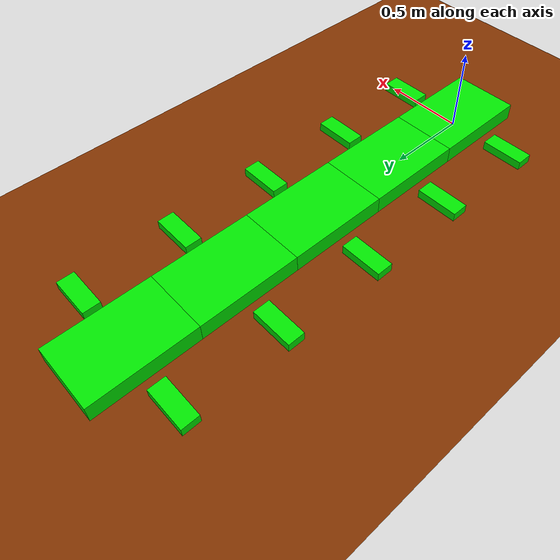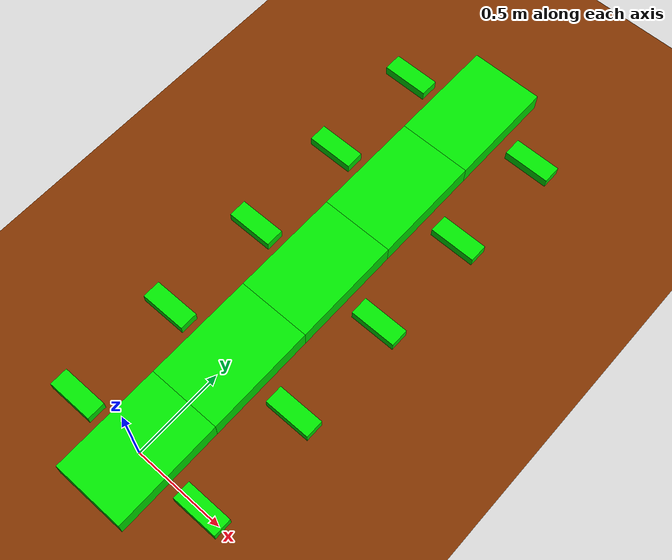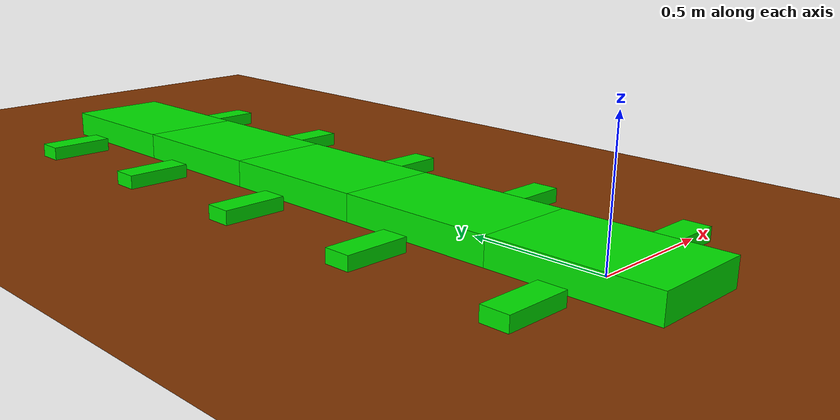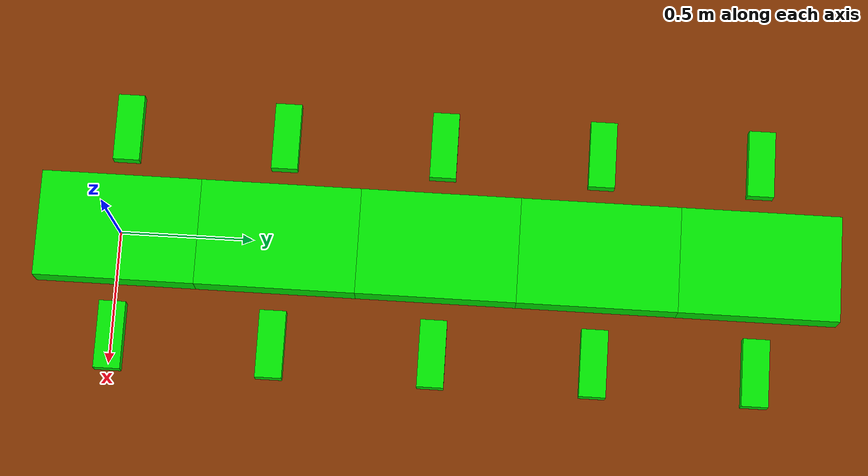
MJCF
<mujoco>
  <worldbody>
    <light diffuse=".5 .5 .5" pos="0 0 0" dir="0 -1 0" />
    <geom type="plane" size="10 10 0.1" rgba=".5 0.2 0 1" />
    <body name="unit0" pos="0 0 0" euler="0 0 0">
      <joint name="body_joint0" type="free" axis="0 0 0" pos="0 0 0" range="-20 20" />
      <body name="body0" pos="0 0.0 0" euler="0 0 0">
        <geom type="box" size=".2 .3 .1" rgba="0 .9 0 1" mass="1.0248361465621194" />
      </body>
      <body name="body0leg1" pos=".4 0.0 0" euler="0 -90 90">
        <joint name="body0j1" type="hinge" axis="0 1 0" pos="0 0 .25" range="-30 30" />
        <geom type="box" size=".05 .05 0.12694049221885484" rgba="0 .9 0 1" mass="0.8280491453051654" />
      </body>
      <body name="body0leg2" pos="-.4 0.0 0" euler="0 90 -90">
        <joint name="body0j2" type="hinge" axis="0 1 0" pos="0 0 .25" range="-30 30" />
        <geom type="box" size=".05 .05 0.12694049221885484" rgba="0 .9 0 1" mass="0.8280491453051654" />
      </body>
      <body name="unit1" pos="0 0 0" euler="0 0 0">
        <joint name="body_joint1" type="hinge" axis="0 0 1" pos="0 .35 0" range="-20 20" />
        <body name="body1" pos="0 0.6 0" euler="0 0 0">
          <geom type="box" size=".2 .3 .1" rgba="0 .9 0 1" mass="1.0248361465621194" />
        </body>
        <body name="body1leg1" pos=".4 0.6 0" euler="0 -90 90">
          <joint name="body1j1" type="hinge" axis="0 1 0" pos="0 0 .25" range="-30 30" />
          <geom type="box" size=".05 .05 0.12694049221885484" rgba="0 .9 0 1" mass="0.8280491453051654" />
        </body>
        <body name="body1leg2" pos="-.4 0.6 0" euler="0 90 -90">
          <joint name="body1j2" type="hinge" axis="0 1 0" pos="0 0 .25" range="-30 30" />
          <geom type="box" size=".05 .05 0.12694049221885484" rgba="0 .9 0 1" mass="0.8280491453051654" />
        </body>
        <body name="unit2" pos="0 0 0" euler="0 0 0">
          <joint name="body_joint2" type="hinge" axis="0 0 1" pos="0 .35 0" range="-20 20" />
          <body name="body2" pos="0 1.2 0" euler="0 0 0">
            <geom type="box" size=".2 .3 .1" rgba="0 .9 0 1" mass="1.0248361465621194" />
          </body>
          <body name="body2leg1" pos=".4 1.2 0" euler="0 -90 90">
            <joint name="body2j1" type="hinge" axis="0 1 0" pos="0 0 .25" range="-30 30" />
            <geom type="box" size=".05 .05 0.12694049221885484" rgba="0 .9 0 1" mass="0.8280491453051654" />
          </body>
          <body name="body2leg2" pos="-.4 1.2 0" euler="0 90 -90">
            <joint name="body2j2" type="hinge" axis="0 1 0" pos="0 0 .25" range="-30 30" />
            <geom type="box" size=".05 .05 0.12694049221885484" rgba="0 .9 0 1" mass="0.8280491453051654" />
          </body>
          <body name="unit3" pos="0 0 0" euler="0 0 0">
            <joint name="body_joint3" type="hinge" axis="0 0 1" pos="0 .35 0" range="-20 20" />
            <body name="body3" pos="0 1.7999999999999998 0" euler="0 0 0">
              <geom type="box" size=".2 .3 .1" rgba="0 .9 0 1" mass="1.0248361465621194" />
            </body>
            <body name="body3leg1" pos=".4 1.7999999999999998 0" euler="0 -90 90">
              <joint name="body3j1" type="hinge" axis="0 1 0" pos="0 0 .25" range="-30 30" />
              <geom type="box" size=".05 .05 0.12694049221885484" rgba="0 .9 0 1" mass="0.8280491453051654" />
            </body>
            <body name="body3leg2" pos="-.4 1.7999999999999998 0" euler="0 90 -90">
              <joint name="body3j2" type="hinge" axis="0 1 0" pos="0 0 .25" range="-30 30" />
              <geom type="box" size=".05 .05 0.12694049221885484" rgba="0 .9 0 1" mass="0.8280491453051654" />
            </body>
            <body name="unit4" pos="0 0 0" euler="0 0 0">
              <joint name="body_joint4" type="hinge" axis="0 0 1" pos="0 .35 0" range="-20 20" />
              <body name="body4" pos="0 2.4 0" euler="0 0 0">
                <geom type="box" size=".2 .3 .1" rgba="0 .9 0 1" mass="1.0248361465621194" />
              </body>
              <body name="body4leg1" pos=".4 2.4 0" euler="0 -90 90">
                <joint name="body4j1" type="hinge" axis="0 1 0" pos="0 0 .25" range="-30 30" />
                <geom type="box" size=".05 .05 0.12694049221885484" rgba="0 .9 0 1" mass="0.8280491453051654" />
              </body>
              <body name="body4leg2" pos="-.4 2.4 0" euler="0 90 -90">
                <joint name="body4j2" type="hinge" axis="0 1 0" pos="0 0 .25" range="-30 30" />
                <geom type="box" size=".05 .05 0.12694049221885484" rgba="0 .9 0 1" mass="0.8280491453051654" />
              </body>
            </body>
          </body>
        </body>
      </body>
    </body>
  </worldbody>
  <actuator>
    <motor joint="body0j1" name="m_body0j1" gear="5" ctrllimited="true" ctrlrange="-10 10" />
    <motor joint="body0j2" name="m_body0j2" gear="5" ctrllimited="true" ctrlrange="-10 10" />
    <motor joint="body1j1" name="m_body1j1" gear="5" ctrllimited="true" ctrlrange="-10 10" />
    <motor joint="body1j2" name="m_body1j2" gear="5" ctrllimited="true" ctrlrange="-10 10" />
    <motor joint="body_joint1" name="m_body_joint1" gear="3" ctrllimited="true" ctrlrange="-5 5" />
    <motor joint="body2j1" name="m_body2j1" gear="5" ctrllimited="true" ctrlrange="-10 10" />
    <motor joint="body2j2" name="m_body2j2" gear="5" ctrllimited="true" ctrlrange="-10 10" />
    <motor joint="body_joint2" name="m_body_joint2" gear="3" ctrllimited="true" ctrlrange="-5 5" />
    <motor joint="body3j1" name="m_body3j1" gear="5" ctrllimited="true" ctrlrange="-10 10" />
    <motor joint="body3j2" name="m_body3j2" gear="5" ctrllimited="true" ctrlrange="-10 10" />
    <motor joint="body_joint3" name="m_body_joint3" gear="3" ctrllimited="true" ctrlrange="-5 5" />
    <motor joint="body4j1" name="m_body4j1" gear="5" ctrllimited="true" ctrlrange="-10 10" />
    <motor joint="body4j2" name="m_body4j2" gear="5" ctrllimited="true" ctrlrange="-10 10" />
    <motor joint="body_joint4" name="m_body_joint4" gear="3" ctrllimited="true" ctrlrange="-5 5" />
  </actuator>
</mujoco>
